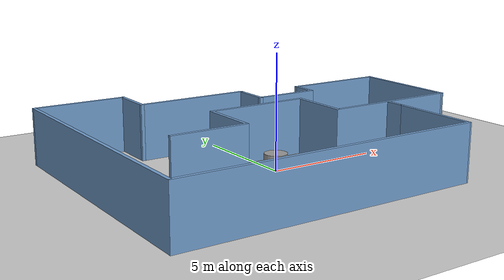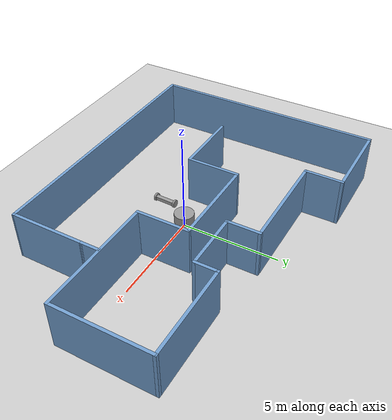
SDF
<sdf version="1.7">
 <world name="default">
  <plugin name="hello" filename="libhello.so"/>
  <light name="sun" type="directional">
   <pose>0 0 10 0 -0 0</pose>
   <diffuse>0.8 0.8 0.8 1</diffuse>
   <specular>0.2 0.2 0.2 1</specular>
   <attenuation>
    <range>1000</range>
    <constant>0.9</constant>
    <linear>0.01</linear>
    <quadratic>0.001</quadratic>
   </attenuation>
   <direction>-0.5 0.1 -0.9</direction>
   <spot><inner_angle>0</inner_angle><outer_angle>0</outer_angle><falloff>0</falloff></spot>
  </light>
  <model name="ground_plane">
   <static>1</static>
   <link name="link">
    <collision name="collision">
     <geometry><plane><normal>0 0 1</normal><size>100 100</size></plane></geometry>
     <surface>
      <contact><collide_bitmask>65535</collide_bitmask></contact>
      <friction><ode><mu>100</mu><mu2>50</mu2></ode></friction>
     </surface>
    </collision>
    <visual name="visual">
     <cast_shadows>0</cast_shadows>
     <geometry><plane><normal>0 0 1</normal><size>100 100</size></plane></geometry>
     <material>
      <script><uri>file://media/materials/scripts/gazebo.material</uri><name>Gazebo/Grey</name></script>
     </material>
    </visual>
   </link>
  </model>
  <gravity>0 0 -9.8</gravity>
  <magnetic_field>6e-06 2.3e-05 -4.2e-05</magnetic_field>
  <atmosphere type="adiabatic"/>
  <physics type="ode">
   <max_step_size>0.001</max_step_size>
   <real_time_factor>1</real_time_factor>
   <real_time_update_rate>1000</real_time_update_rate>
  </physics>
  <scene><ambient>0.4 0.4 0.4 1</ambient><background>0.7 0.7 0.7 1</background><shadows>1</shadows></scene>
  <spherical_coordinates>
   <surface_model>EARTH_WGS84</surface_model>
   <latitude_deg>0</latitude_deg>
   <longitude_deg>0</longitude_deg>
   <elevation>0</elevation>
   <heading_deg>0</heading_deg>
  </spherical_coordinates>
  <model name="HumanoidRobot">
   <link name="link_1">
    <inertial>
     <mass>1</mass>
     <inertia><ixx>0.145833</ixx><ixy>0</ixy><ixz>0</ixz><iyy>0.145833</iyy><iyz>0</iyz><izz>0.125</izz></inertia>
    </inertial>
    <pose>0 0 0.266667 0 -0 0</pose>
    <visual name="visual">
     <geometry><cylinder><radius>0.5</radius><length>0.5</length></cylinder></geometry>
     <material>
      <lighting>1</lighting>
      <script><uri>file://media/materials/scripts/gazebo.material</uri><name>Gazebo/Grey</name></script>
      <shader type="pixel"><normal_map>__default__</normal_map></shader>
      <ambient>0.3 0.3 0.3 1</ambient>
      <diffuse>0.7 0.7 0.7 1</diffuse>
      <specular>0.01 0.01 0.01 1</specular>
      <emissive>0 0 0 1</emissive>
     </material>
    </visual>
    <collision name="collision">
     <geometry><cylinder><radius>0.5</radius><length>0.5</length></cylinder></geometry>
     <surface>
      <friction>
       <ode><mu>1</mu><mu2>1</mu2><fdir1>0 0 0</fdir1><slip1>0</slip1><slip2>0</slip2></ode>
       <torsional>
        <coefficient>1</coefficient>
        <patch_radius>0</patch_radius>
        <surface_radius>0</surface_radius>
        <use_patch_radius>1</use_patch_radius>
        <ode><slip>0</slip></ode>
       </torsional>
      </friction>
      <bounce><restitution_coefficient>0</restitution_coefficient><threshold>1e+06</threshold></bounce>
      <contact>
       <collide_without_contact>0</collide_without_contact>
       <collide_without_contact_bitmask>1</collide_without_contact_bitmask>
       <collide_bitmask>1</collide_bitmask>
       <ode>
        <soft_cfm>0</soft_cfm>
        <soft_erp>0.2</soft_erp>
        <kp>1e+13</kp>
        <kd>1</kd>
        <max_vel>0.01</max_vel>
        <min_depth>0</min_depth>
       </ode>
       <bullet>
        <split_impulse>1</split_impulse>
        <split_impulse_penetration_threshold>-0.01</split_impulse_penetration_threshold>
        <soft_cfm>0</soft_cfm>
        <soft_erp>0.2</soft_erp>
        <kp>1e+13</kp>
        <kd>1</kd>
       </bullet>
      </contact>
     </surface>
    </collision>
   </link>
   <link name="link_2">
    <inertial>
     <mass>1</mass>
     <inertia><ixx>0.145833</ixx><ixy>0</ixy><ixz>0</ixz><iyy>0.145833</iyy><iyz>0</iyz><izz>0.125</izz></inertia>
    </inertial>
    <pose>0 0.424986 -0.133333 1.5707 -0 0</pose>
    <visual name="visual">
     <geometry><cylinder><radius>0.15</radius><length>0.15</length></cylinder></geometry>
     <material>
      <lighting>1</lighting>
      <script><uri>file://media/materials/scripts/gazebo.material</uri><name>Gazebo/Grey</name></script>
      <shader type="pixel"><normal_map>__default__</normal_map></shader>
      <ambient>0.3 0.3 0.3 1</ambient>
      <diffuse>0.7 0.7 0.7 1</diffuse>
      <specular>0.01 0.01 0.01 1</specular>
      <emissive>0 0 0 1</emissive>
     </material>
    </visual>
    <collision name="collision">
     <geometry><cylinder><radius>0.15</radius><length>0.15</length></cylinder></geometry>
     <surface>
      <friction>
       <ode><mu>1</mu><mu2>1</mu2><fdir1>0 0 0</fdir1><slip1>0</slip1><slip2>0</slip2></ode>
       <torsional>
        <coefficient>1</coefficient>
        <patch_radius>0</patch_radius>
        <surface_radius>0</surface_radius>
        <use_patch_radius>1</use_patch_radius>
        <ode><slip>0</slip></ode>
       </torsional>
      </friction>
      <bounce><restitution_coefficient>0</restitution_coefficient><threshold>1e+06</threshold></bounce>
      <contact>
       <collide_without_contact>0</collide_without_contact>
       <collide_without_contact_bitmask>1</collide_without_contact_bitmask>
       <collide_bitmask>1</collide_bitmask>
       <ode>
        <soft_cfm>0</soft_cfm>
        <soft_erp>0.2</soft_erp>
        <kp>1e+13</kp>
        <kd>1</kd>
        <max_vel>0.01</max_vel>
        <min_depth>0</min_depth>
       </ode>
       <bullet>
        <split_impulse>1</split_impulse>
        <split_impulse_penetration_threshold>-0.01</split_impulse_penetration_threshold>
        <soft_cfm>0</soft_cfm>
        <soft_erp>0.2</soft_erp>
        <kp>1e+13</kp>
        <kd>1</kd>
       </bullet>
      </contact>
     </surface>
    </collision>
   </link>
   <link name="link_2_clone">
    <inertial>
     <mass>1</mass>
     <inertia><ixx>0.145833</ixx><ixy>0</ixy><ixz>0</ixz><iyy>0.145833</iyy><iyz>0</iyz><izz>0.125</izz></inertia>
    </inertial>
    <pose>0 -0.424986 -0.133333 1.5707 -0 0</pose>
    <visual name="visual">
     <geometry><cylinder><radius>0.15</radius><length>0.15</length></cylinder></geometry>
     <material>
      <lighting>1</lighting>
      <script><uri>file://media/materials/scripts/gazebo.material</uri><name>Gazebo/Grey</name></script>
      <shader type="pixel"><normal_map>__default__</normal_map></shader>
      <ambient>0.3 0.3 0.3 1</ambient>
      <diffuse>0.7 0.7 0.7 1</diffuse>
      <specular>0.01 0.01 0.01 1</specular>
      <emissive>0 0 0 1</emissive>
     </material>
    </visual>
    <collision name="collision">
     <geometry><cylinder><radius>0.15</radius><length>0.15</length></cylinder></geometry>
     <surface>
      <friction>
       <ode><mu>1</mu><mu2>1</mu2><fdir1>0 0 0</fdir1><slip1>0</slip1><slip2>0</slip2></ode>
       <torsional>
        <coefficient>1</coefficient>
        <patch_radius>0</patch_radius>
        <surface_radius>0</surface_radius>
        <use_patch_radius>1</use_patch_radius>
        <ode><slip>0</slip></ode>
       </torsional>
      </friction>
      <bounce><restitution_coefficient>0</restitution_coefficient><threshold>1e+06</threshold></bounce>
      <contact>
       <collide_without_contact>0</collide_without_contact>
       <collide_without_contact_bitmask>1</collide_without_contact_bitmask>
       <collide_bitmask>1</collide_bitmask>
       <ode>
        <soft_cfm>0</soft_cfm>
        <soft_erp>0.2</soft_erp>
        <kp>1e+13</kp>
        <kd>1</kd>
        <max_vel>0.01</max_vel>
        <min_depth>0</min_depth>
       </ode>
       <bullet>
        <split_impulse>1</split_impulse>
        <split_impulse_penetration_threshold>-0.01</split_impulse_penetration_threshold>
        <soft_cfm>0</soft_cfm>
        <soft_erp>0.2</soft_erp>
        <kp>1e+13</kp>
        <kd>1</kd>
       </bullet>
      </contact>
     </surface>
    </collision>
   </link>
   <joint name="link_1_JOINT_0" type="revolute">
    <parent>link_1</parent>
    <child>link_2_clone</child>
    <axis>
     <xyz>0 0 1</xyz>
     <limit>
      <lower>-1.79769e+308</lower>
      <upper>1.79769e+308</upper>
      <effort>-1</effort>
      <velocity>-1</velocity>
     </limit>
     <dynamics>
      <spring_reference>0</spring_reference>
      <spring_stiffness>0</spring_stiffness>
      <damping>0</damping>
     </dynamics>
    </axis>
    <physics>
     <ode><limit><cfm>0</cfm><erp>0.2</erp></limit><suspension><cfm>0</cfm><erp>0.2</erp></suspension></ode>
    </physics>
   </joint>
   <joint name="link_1_JOINT_1" type="revolute">
    <parent>link_1</parent>
    <child>link_2</child>
    <axis>
     <xyz>0 0 1</xyz>
     <limit>
      <lower>-1.79769e+308</lower>
      <upper>1.79769e+308</upper>
      <effort>-1</effort>
      <velocity>-1</velocity>
     </limit>
     <dynamics>
      <spring_reference>0</spring_reference>
      <spring_stiffness>0</spring_stiffness>
      <damping>0</damping>
     </dynamics>
    </axis>
    <physics>
     <ode><limit><cfm>0</cfm><erp>0.2</erp></limit><suspension><cfm>0</cfm><erp>0.2</erp></suspension></ode>
    </physics>
   </joint>
   <static>0</static>
   <pose>0 9.3e-05 0.28334 0 -0 0</pose>
  </model>
  <model name="Building">
   <pose>0.38225 0.474343 0 0 -0 0</pose>
   <link name="Wall_0">
    <collision name="Wall_0_Collision">
     <geometry><box><size>3.5 0.15 2.5</size></box></geometry>
     <pose>0 0 1.25 0 -0 0</pose>
    </collision>
    <visual name="Wall_0_Visual">
     <pose>0 0 1.25 0 -0 0</pose>
     <geometry><box><size>3.5 0.15 2.5</size></box></geometry>
     <material>
      <script><uri>file://media/materials/scripts/gazebo.material</uri><name>Gazebo/Grey</name></script>
      <ambient>0.447059 0.623529 0.811765 1</ambient>
     </material>
     <meta><layer>0</layer></meta>
    </visual>
    <pose>-4.05 -1.27487 0 0 -0 0</pose>
   </link>
   <link name="Wall_1">
    <collision name="Wall_1_Collision">
     <geometry><box><size>2.75 0.15 2.5</size></box></geometry>
     <pose>0 0 1.25 0 -0 0</pose>
    </collision>
    <visual name="Wall_1_Visual">
     <pose>0 0 1.25 0 -0 0</pose>
     <geometry><box><size>2.75 0.15 2.5</size></box></geometry>
     <material>
      <script><uri>file://media/materials/scripts/gazebo.material</uri><name>Gazebo/Grey</name></script>
      <ambient>0.447059 0.623529 0.811765 1</ambient>
     </material>
     <meta><layer>0</layer></meta>
    </visual>
    <pose>-2.375 0.025133 0 0 -0 1.5708</pose>
   </link>
   <link name="Wall_10">
    <collision name="Wall_10_Collision">
     <geometry><box><size>5.25 0.15 2.5</size></box></geometry>
     <pose>0 0 1.25 0 -0 0</pose>
    </collision>
    <visual name="Wall_10_Visual">
     <pose>0 0 1.25 0 -0 0</pose>
     <geometry><box><size>5.25 0.15 2.5</size></box></geometry>
     <material>
      <script><uri>file://media/materials/scripts/gazebo.material</uri><name>Gazebo/Grey</name></script>
      <ambient>0.447059 0.623529 0.811765 1</ambient>
     </material>
     <meta><layer>0</layer></meta>
    </visual>
    <pose>-1.675 4.07513 0 0 -0 3.14159</pose>
   </link>
   <link name="Wall_11">
    <collision name="Wall_11_Collision">
     <geometry><box><size>2 0.15 2.5</size></box></geometry>
     <pose>0 0 1.25 0 -0 0</pose>
    </collision>
    <visual name="Wall_11_Visual">
     <pose>0 0 1.25 0 -0 0</pose>
     <geometry><box><size>2 0.15 2.5</size></box></geometry>
     <material>
      <script><uri>file://media/materials/scripts/gazebo.material</uri><name>Gazebo/Grey</name></script>
      <ambient>0.447059 0.623529 0.811765 1</ambient>
     </material>
     <meta><layer>0</layer></meta>
    </visual>
    <pose>-4.225 5.00013 0 0 -0 1.5708</pose>
   </link>
   <link name="Wall_12">
    <collision name="Wall_12_Collision">
     <geometry><box><size>4.25 0.15 2.5</size></box></geometry>
     <pose>0 0 1.25 0 -0 0</pose>
    </collision>
    <visual name="Wall_12_Visual">
     <pose>0 0 1.25 0 -0 0</pose>
     <geometry><box><size>4.25 0.15 2.5</size></box></geometry>
     <material>
      <script><uri>file://media/materials/scripts/gazebo.material</uri><name>Gazebo/Grey</name></script>
      <ambient>0.447059 0.623529 0.811765 1</ambient>
     </material>
     <meta><layer>0</layer></meta>
    </visual>
    <pose>-6.275 5.92513 0 0 -0 3.14159</pose>
   </link>
   <link name="Wall_13">
    <collision name="Wall_13_Collision">
     <geometry><box><size>12 0.15 2.5</size></box></geometry>
     <pose>0 0 1.25 0 -0 0</pose>
    </collision>
    <visual name="Wall_13_Visual">
     <pose>0 0 1.25 0 -0 0</pose>
     <geometry><box><size>12 0.15 2.5</size></box></geometry>
     <material>
      <script><uri>file://media/materials/scripts/gazebo.material</uri><name>Gazebo/Grey</name></script>
      <ambient>0.447059 0.623529 0.811765 1</ambient>
     </material>
     <meta><layer>0</layer></meta>
    </visual>
    <pose>-8.325 0.000133 0 0 -0 -1.5708</pose>
   </link>
   <link name="Wall_14">
    <collision name="Wall_14_Collision">
     <geometry><box><size>13.5 0.15 2.5</size></box></geometry>
     <pose>0 0 1.25 0 -0 0</pose>
    </collision>
    <visual name="Wall_14_Visual">
     <pose>0 0 1.25 0 -0 0</pose>
     <geometry><box><size>13.5 0.15 2.5</size></box></geometry>
     <material>
      <script><uri>file://media/materials/scripts/gazebo.material</uri><name>Gazebo/Grey</name></script>
      <ambient>0.447059 0.623529 0.811765 1</ambient>
     </material>
     <meta><layer>0</layer></meta>
    </visual>
    <pose>-1.65 -5.92487 0 0 -0 0</pose>
   </link>
   <link name="Wall_15">
    <collision name="Wall_15_Collision">
     <geometry><box><size>3.86777 0.15 2.5</size></box></geometry>
     <pose>0 0 1.25 0 -0 0</pose>
    </collision>
    <visual name="Wall_15_Visual">
     <pose>0 0 1.25 0 -0 0</pose>
     <geometry><box><size>3.86777 0.15 2.5</size></box></geometry>
     <material>
      <script><uri>file://media/materials/scripts/gazebo.material</uri><name>Gazebo/Grey</name></script>
      <ambient>0.447059 0.623529 0.811765 1</ambient>
     </material>
     <meta><layer>0</layer></meta>
    </visual>
    <pose>5.03161 -4.06599 0 0 -0 1.56724</pose>
   </link>
   <link name="Wall_16">
    <collision name="Wall_16_Collision">
     <geometry><box><size>1 0.15 2.5</size></box></geometry>
     <pose>0 0 1.25 0 -0 0</pose>
    </collision>
    <visual name="Wall_16_Visual">
     <pose>0 0 1.25 0 -0 0</pose>
     <geometry><box><size>1 0.15 2.5</size></box></geometry>
     <material>
      <script><uri>file://media/materials/scripts/gazebo.material</uri><name>Gazebo/Grey</name></script>
      <ambient>0.447059 0.623529 0.811765 1</ambient>
     </material>
     <meta><layer>0</layer></meta>
    </visual>
    <pose>5.03822 -1.76889 0 0 -0 1.5708</pose>
   </link>
   <link name="Wall_2">
    <collision name="Wall_2_Collision">
     <geometry><box><size>4.75 0.15 2.5</size></box></geometry>
     <pose>0 0 1.25 0 -0 0</pose>
    </collision>
    <visual name="Wall_2_Visual">
     <pose>0 0 1.25 0 -0 0</pose>
     <geometry><box><size>4.75 0.15 2.5</size></box></geometry>
     <material>
      <script><uri>file://media/materials/scripts/gazebo.material</uri><name>Gazebo/Grey</name></script>
      <ambient>0.447059 0.623529 0.811765 1</ambient>
     </material>
     <meta><layer>0</layer></meta>
    </visual>
    <pose>-0.075 1.32513 0 0 -0 0</pose>
   </link>
   <link name="Wall_3">
    <collision name="Wall_3_Collision">
     <geometry><box><size>2.75 0.15 2.5</size></box></geometry>
     <pose>0 0 1.25 0 -0 0</pose>
    </collision>
    <visual name="Wall_3_Visual">
     <pose>0 0 1.25 0 -0 0</pose>
     <geometry><box><size>2.75 0.15 2.5</size></box></geometry>
     <material>
      <script><uri>file://media/materials/scripts/gazebo.material</uri><name>Gazebo/Grey</name></script>
      <ambient>0.447059 0.623529 0.811765 1</ambient>
     </material>
     <meta><layer>0</layer></meta>
    </visual>
    <pose>2.225 0.025133 0 0 -0 -1.5708</pose>
   </link>
   <link name="Wall_4">
    <collision name="Wall_4_Collision">
     <geometry><box><size>6.25 0.15 2.5</size></box></geometry>
     <pose>0 0 1.25 0 -0 0</pose>
    </collision>
    <visual name="Wall_4_Visual">
     <pose>0 0 1.25 0 -0 0</pose>
     <geometry><box><size>6.25 0.15 2.5</size></box></geometry>
     <material>
      <script><uri>file://media/materials/scripts/gazebo.material</uri><name>Gazebo/Grey</name></script>
      <ambient>0.447059 0.623529 0.811765 1</ambient>
     </material>
     <meta><layer>0</layer></meta>
    </visual>
    <pose>5.275 -1.27487 0 0 -0 0</pose>
   </link>
   <link name="Wall_5">
    <collision name="Wall_5_Collision">
     <geometry><box><size>5 0.15 2.5</size></box></geometry>
     <pose>0 0 1.25 0 -0 0</pose>
    </collision>
    <visual name="Wall_5_Visual">
     <pose>0 0 1.25 0 -0 0</pose>
     <geometry><box><size>5 0.15 2.5</size></box></geometry>
     <material>
      <script><uri>file://media/materials/scripts/gazebo.material</uri><name>Gazebo/Grey</name></script>
      <ambient>0.447059 0.623529 0.811765 1</ambient>
     </material>
     <meta><layer>0</layer></meta>
    </visual>
    <pose>8.325 1.15013 0 0 -0 1.5708</pose>
   </link>
   <link name="Wall_6">
    <collision name="Wall_6_Collision">
     <geometry><box><size>4.75 0.15 2.5</size></box></geometry>
     <pose>0 0 1.25 0 -0 0</pose>
    </collision>
    <visual name="Wall_6_Visual">
     <pose>0 0 1.25 0 -0 0</pose>
     <geometry><box><size>4.75 0.15 2.5</size></box></geometry>
     <material>
      <script><uri>file://media/materials/scripts/gazebo.material</uri><name>Gazebo/Grey</name></script>
      <ambient>0.447059 0.623529 0.811765 1</ambient>
     </material>
     <meta><layer>0</layer></meta>
    </visual>
    <pose>6.025 3.57513 0 0 -0 3.14159</pose>
   </link>
   <link name="Wall_7">
    <collision name="Wall_7_Collision">
     <geometry><box><size>1.25 0.15 2.5</size></box></geometry>
     <pose>0 0 1.25 0 -0 0</pose>
    </collision>
    <visual name="Wall_7_Visual">
     <pose>0 0 1.25 0 -0 0</pose>
     <geometry><box><size>1.25 0.15 2.5</size></box></geometry>
     <material>
      <script><uri>file://media/materials/scripts/gazebo.material</uri><name>Gazebo/Grey</name></script>
      <ambient>0.447059 0.623529 0.811765 1</ambient>
     </material>
     <meta><layer>0</layer></meta>
    </visual>
    <pose>3.725 3.02513 0 0 -0 -1.5708</pose>
   </link>
   <link name="Wall_8">
    <collision name="Wall_8_Collision">
     <geometry><box><size>3 0.15 2.5</size></box></geometry>
     <pose>0 0 1.25 0 -0 0</pose>
    </collision>
    <visual name="Wall_8_Visual">
     <pose>0 0 1.25 0 -0 0</pose>
     <geometry><box><size>3 0.15 2.5</size></box></geometry>
     <material>
      <script><uri>file://media/materials/scripts/gazebo.material</uri><name>Gazebo/Grey</name></script>
      <ambient>0.447059 0.623529 0.811765 1</ambient>
     </material>
     <meta><layer>0</layer></meta>
    </visual>
    <pose>2.3 2.47513 0 0 -0 3.14159</pose>
   </link>
   <link name="Wall_9">
    <collision name="Wall_9_Collision">
     <geometry><box><size>1.75 0.15 2.5</size></box></geometry>
     <pose>0 0 1.25 0 -0 0</pose>
    </collision>
    <visual name="Wall_9_Visual">
     <pose>0 0 1.25 0 -0 0</pose>
     <geometry><box><size>1.75 0.15 2.5</size></box></geometry>
     <material>
      <script><uri>file://media/materials/scripts/gazebo.material</uri><name>Gazebo/Grey</name></script>
      <ambient>0.447059 0.623529 0.811765 1</ambient>
     </material>
     <meta><layer>0</layer></meta>
    </visual>
    <pose>0.875 3.27513 0 0 -0 1.5708</pose>
   </link>
   <static>1</static>
  </model>
  <model name="Robot2">
   <link name="link_0">
    <inertial>
     <mass>1</mass>
     <inertia>
      <ixx>0.166667</ixx>
      <ixy>0</ixy>
      <ixz>0</ixz>
      <iyy>0.166667</iyy>
      <iyz>0</iyz>
      <izz>0.166667</izz>
     </inertia>
    </inertial>
    <pose>-0.207524 0.50787 0 0 -0 0</pose>
    <visual name="visual">
     <geometry><box><size>0.2 1 0.2</size></box></geometry>
     <material>
      <lighting>1</lighting>
      <script><uri>file://media/materials/scripts/gazebo.material</uri><name>Gazebo/Grey</name></script>
      <shader type="pixel"><normal_map>__default__</normal_map></shader>
      <ambient>0.3 0.3 0.3 1</ambient>
      <diffuse>0.7 0.7 0.7 1</diffuse>
      <specular>0.01 0.01 0.01 1</specular>
      <emissive>0 0 0 1</emissive>
     </material>
    </visual>
    <collision name="collision">
     <geometry><box><size>0.2 1 0.2</size></box></geometry>
     <surface>
      <friction>
       <ode><mu>1</mu><mu2>1</mu2><fdir1>0 0 0</fdir1><slip1>0</slip1><slip2>0</slip2></ode>
       <torsional>
        <coefficient>1</coefficient>
        <patch_radius>0</patch_radius>
        <surface_radius>0</surface_radius>
        <use_patch_radius>1</use_patch_radius>
        <ode><slip>0</slip></ode>
       </torsional>
      </friction>
      <bounce><restitution_coefficient>0</restitution_coefficient><threshold>1e+06</threshold></bounce>
      <contact>
       <collide_without_contact>0</collide_without_contact>
       <collide_without_contact_bitmask>1</collide_without_contact_bitmask>
       <collide_bitmask>1</collide_bitmask>
       <ode>
        <soft_cfm>0</soft_cfm>
        <soft_erp>0.2</soft_erp>
        <kp>1e+13</kp>
        <kd>1</kd>
        <max_vel>0.01</max_vel>
        <min_depth>0</min_depth>
       </ode>
       <bullet>
        <split_impulse>1</split_impulse>
        <split_impulse_penetration_threshold>-0.01</split_impulse_penetration_threshold>
        <soft_cfm>0</soft_cfm>
        <soft_erp>0.2</soft_erp>
        <kp>1e+13</kp>
        <kd>1</kd>
       </bullet>
      </contact>
     </surface>
    </collision>
   </link>
   <link name="link_1">
    <inertial>
     <mass>1</mass>
     <inertia><ixx>0.145833</ixx><ixy>0</ixy><ixz>0</ixz><iyy>0.145833</iyy><iyz>0</iyz><izz>0.125</izz></inertia>
    </inertial>
    <pose>-0.187524 -0.042149 0 1.5707 -0 0</pose>
    <visual name="visual">
     <geometry><cylinder><radius>0.2</radius><length>0.1</length></cylinder></geometry>
     <material>
      <lighting>1</lighting>
      <script><uri>file://media/materials/scripts/gazebo.material</uri><name>Gazebo/Grey</name></script>
      <shader type="pixel"><normal_map>__default__</normal_map></shader>
      <ambient>0.3 0.3 0.3 1</ambient>
      <diffuse>0.7 0.7 0.7 1</diffuse>
      <specular>0.01 0.01 0.01 1</specular>
      <emissive>0 0 0 1</emissive>
     </material>
    </visual>
    <collision name="collision">
     <geometry><cylinder><radius>0.2</radius><length>0.1</length></cylinder></geometry>
     <surface>
      <friction>
       <ode><mu>1</mu><mu2>1</mu2><fdir1>0 0 0</fdir1><slip1>0</slip1><slip2>0</slip2></ode>
       <torsional>
        <coefficient>1</coefficient>
        <patch_radius>0</patch_radius>
        <surface_radius>0</surface_radius>
        <use_patch_radius>1</use_patch_radius>
        <ode><slip>0</slip></ode>
       </torsional>
      </friction>
      <bounce><restitution_coefficient>0</restitution_coefficient><threshold>1e+06</threshold></bounce>
      <contact>
       <collide_without_contact>0</collide_without_contact>
       <collide_without_contact_bitmask>1</collide_without_contact_bitmask>
       <collide_bitmask>1</collide_bitmask>
       <ode>
        <soft_cfm>0</soft_cfm>
        <soft_erp>0.2</soft_erp>
        <kp>1e+13</kp>
        <kd>1</kd>
        <max_vel>0.01</max_vel>
        <min_depth>0</min_depth>
       </ode>
       <bullet>
        <split_impulse>1</split_impulse>
        <split_impulse_penetration_threshold>-0.01</split_impulse_penetration_threshold>
        <soft_cfm>0</soft_cfm>
        <soft_erp>0.2</soft_erp>
        <kp>1e+13</kp>
        <kd>1</kd>
       </bullet>
      </contact>
     </surface>
    </collision>
   </link>
   <link name="link_1_clone">
    <inertial>
     <mass>1</mass>
     <inertia><ixx>0.145833</ixx><ixy>0</ixy><ixz>0</ixz><iyy>0.145833</iyy><iyz>0</iyz><izz>0.125</izz></inertia>
    </inertial>
    <pose>-0.187524 1.05789 0 1.5707 -0 0</pose>
    <visual name="visual">
     <geometry><cylinder><radius>0.2</radius><length>0.1</length></cylinder></geometry>
     <material>
      <lighting>1</lighting>
      <script><uri>file://media/materials/scripts/gazebo.material</uri><name>Gazebo/Grey</name></script>
      <shader type="pixel"><normal_map>__default__</normal_map></shader>
      <ambient>0.3 0.3 0.3 1</ambient>
      <diffuse>0.7 0.7 0.7 1</diffuse>
      <specular>0.01 0.01 0.01 1</specular>
      <emissive>0 0 0 1</emissive>
     </material>
    </visual>
    <collision name="collision">
     <geometry><cylinder><radius>0.2</radius><length>0.1</length></cylinder></geometry>
     <surface>
      <friction>
       <ode><mu>1</mu><mu2>1</mu2><fdir1>0 0 0</fdir1><slip1>0</slip1><slip2>0</slip2></ode>
       <torsional>
        <coefficient>1</coefficient>
        <patch_radius>0</patch_radius>
        <surface_radius>0</surface_radius>
        <use_patch_radius>1</use_patch_radius>
        <ode><slip>0</slip></ode>
       </torsional>
      </friction>
      <bounce><restitution_coefficient>0</restitution_coefficient><threshold>1e+06</threshold></bounce>
      <contact>
       <collide_without_contact>0</collide_without_contact>
       <collide_without_contact_bitmask>1</collide_without_contact_bitmask>
       <collide_bitmask>1</collide_bitmask>
       <ode>
        <soft_cfm>0</soft_cfm>
        <soft_erp>0.2</soft_erp>
        <kp>1e+13</kp>
        <kd>1</kd>
        <max_vel>0.01</max_vel>
        <min_depth>0</min_depth>
       </ode>
       <bullet>
        <split_impulse>1</split_impulse>
        <split_impulse_penetration_threshold>-0.01</split_impulse_penetration_threshold>
        <soft_cfm>0</soft_cfm>
        <soft_erp>0.2</soft_erp>
        <kp>1e+13</kp>
        <kd>1</kd>
       </bullet>
      </contact>
     </surface>
    </collision>
   </link>
   <joint name="link_0_JOINT_1" type="revolute">
    <parent>link_0</parent>
    <child>link_1</child>
    <axis>
     <xyz>0 0 1</xyz>
     <limit>
      <lower>-1.79769e+308</lower>
      <upper>1.79769e+308</upper>
      <effort>-1</effort>
      <velocity>-1</velocity>
     </limit>
     <dynamics>
      <spring_reference>0</spring_reference>
      <spring_stiffness>0</spring_stiffness>
      <damping>0</damping>
     </dynamics>
    </axis>
    <physics>
     <ode><limit><cfm>0</cfm><erp>0.2</erp></limit><suspension><cfm>0</cfm><erp>0.2</erp></suspension></ode>
    </physics>
   </joint>
   <joint name="link_0_JOINT_2" type="revolute">
    <parent>link_0</parent>
    <child>link_1_clone</child>
    <axis>
     <xyz>0 0 1</xyz>
     <limit>
      <lower>-1.79769e+308</lower>
      <upper>1.79769e+308</upper>
      <effort>-1</effort>
      <velocity>-1</velocity>
     </limit>
     <dynamics>
      <spring_reference>0</spring_reference>
      <spring_stiffness>0</spring_stiffness>
      <damping>0</damping>
     </dynamics>
    </axis>
    <physics>
     <ode><limit><cfm>0</cfm><erp>0.2</erp></limit><suspension><cfm>0</cfm><erp>0.2</erp></suspension></ode>
    </physics>
   </joint>
   <static>0</static>
   <pose>-1.23039 -2.20813 0.21273 -3.14159 -0.067915 3.10232</pose>
  </model>
 </world>
</sdf>
